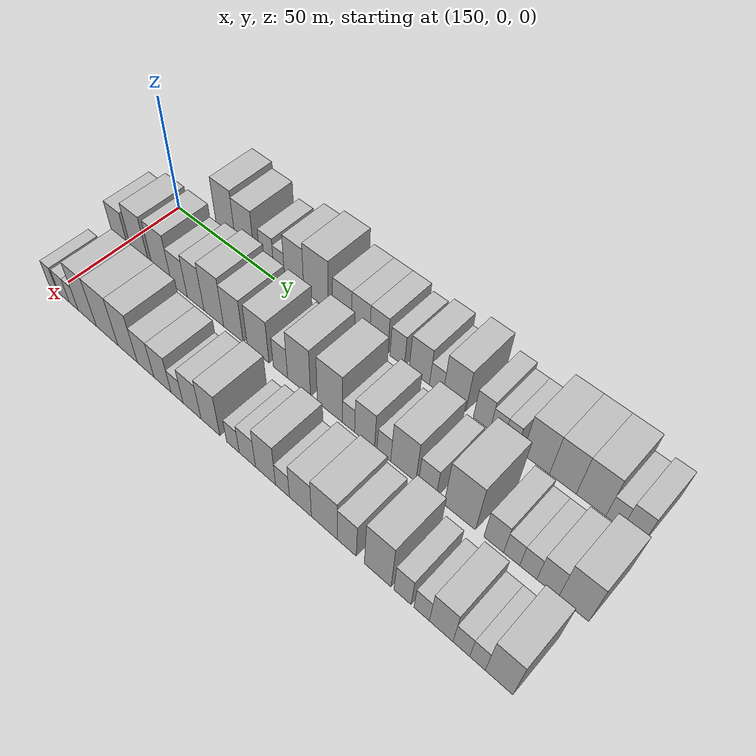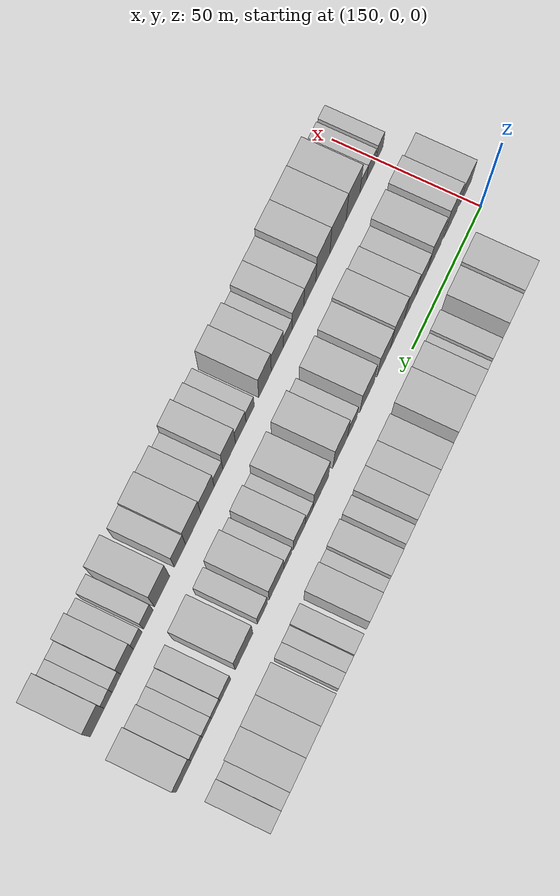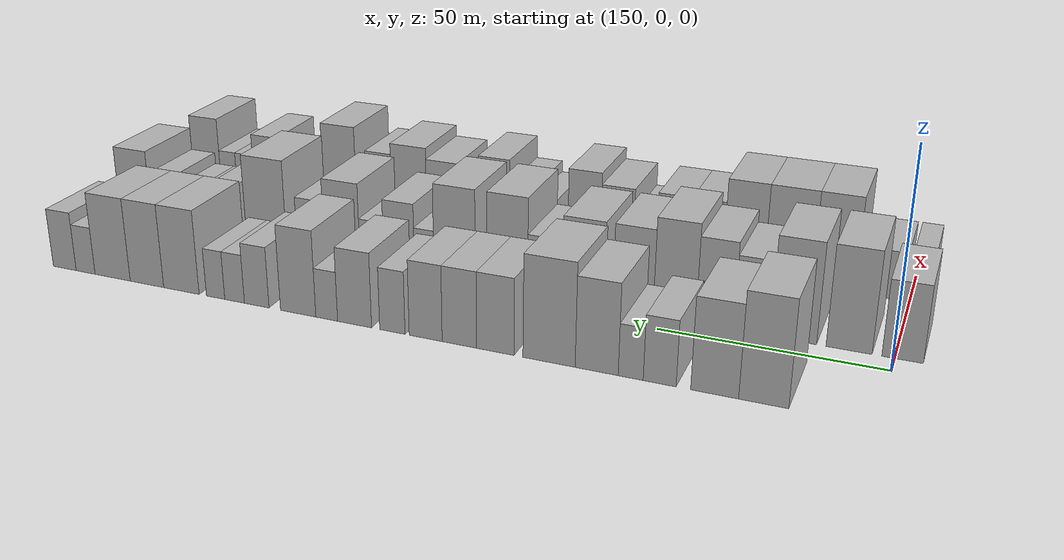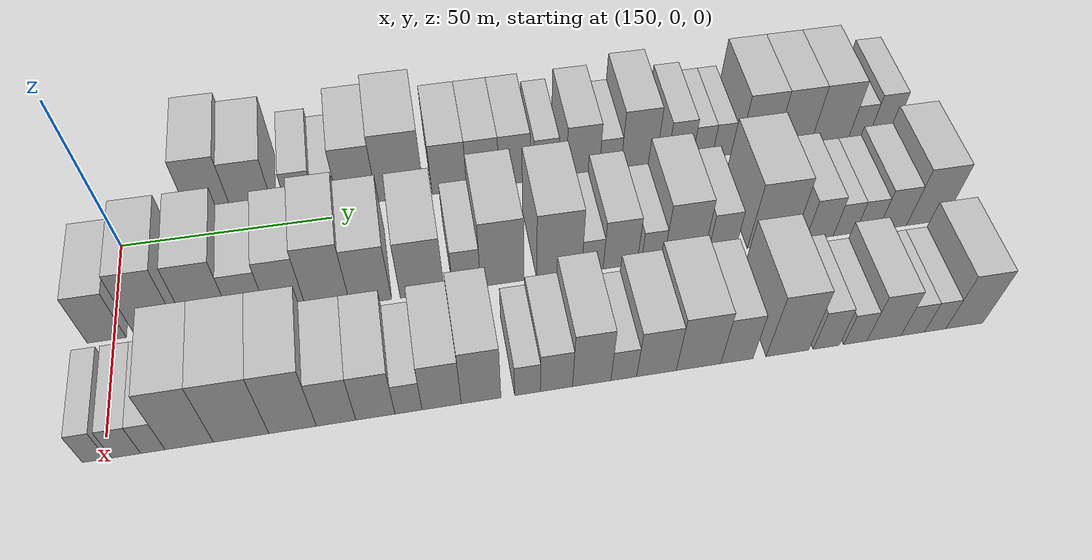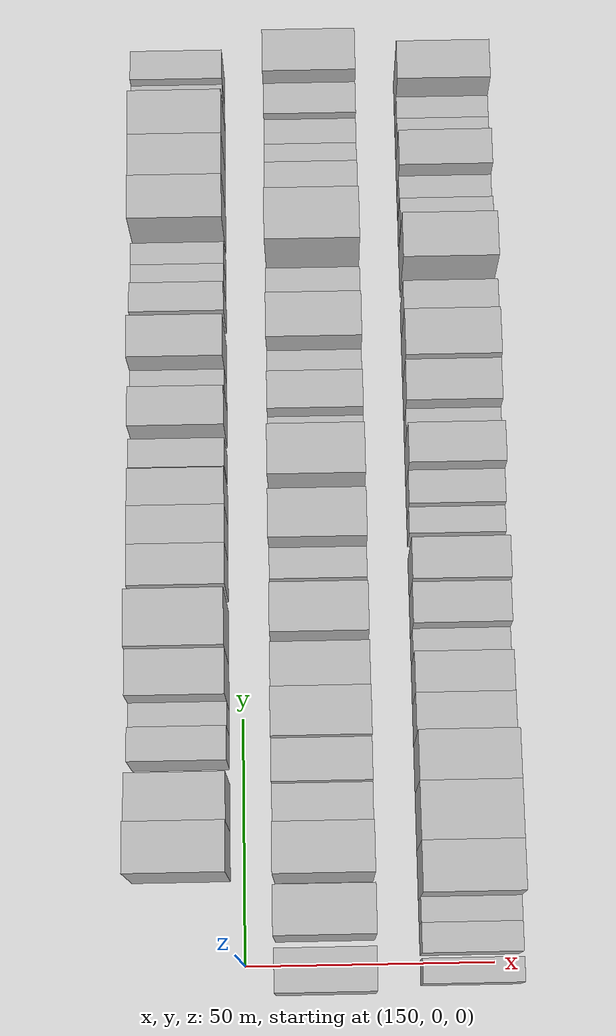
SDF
<sdf version="1.6">
 <world name="default">
  <model name="building_393">
   <static>1</static>
   <pose>137.0000 21.9258 0 0.000000 0.000000 0.000000</pose>
   <link name="link">
    <pose>0 0 12.00 0 0 0</pose>
    <collision name="collision"><geometry><box><size>20.0000 9.9744 24.0000</size></box></geometry></collision>
    <visual name="visual">
     <cast_shadows>0</cast_shadows>
     <geometry><box><size>20.0000 9.9744 24.0000</size></box></geometry>
     <material>
      <script>
       <uri>model://HANNAS_wall/materials/scripts</uri>
       <uri>model://HANNAS_wall/materials/textures</uri>
       <name>vrc/HANNAS_wall</name>
      </script>
     </material>
    </visual>
   </link>
  </model>
  <model name="building_394">
   <static>1</static>
   <pose>137.0000 31.8021 0 0.000000 0.000000 0.000000</pose>
   <link name="link">
    <pose>0 0 10.50 0 0 0</pose>
    <collision name="collision"><geometry><box><size>20.0000 9.7782 21.0000</size></box></geometry></collision>
    <visual name="visual">
     <cast_shadows>0</cast_shadows>
     <geometry><box><size>20.0000 9.7782 21.0000</size></box></geometry>
     <material>
      <script>
       <uri>model://HANNAS_wall/materials/scripts</uri>
       <uri>model://HANNAS_wall/materials/textures</uri>
       <name>vrc/HANNAS_wall</name>
      </script>
     </material>
    </visual>
   </link>
  </model>
  <model name="building_395">
   <static>1</static>
   <pose>137.0000 43.1486 0 0.000000 0.000000 0.000000</pose>
   <link name="link">
    <pose>0 0 7.50 0 0 0</pose>
    <collision name="collision"><geometry><box><size>20.0000 6.9146 15.0000</size></box></geometry></collision>
    <visual name="visual">
     <cast_shadows>0</cast_shadows>
     <geometry><box><size>20.0000 6.9146 15.0000</size></box></geometry>
     <material>
      <script>
       <uri>model://HANNAS_wall/materials/scripts</uri>
       <uri>model://HANNAS_wall/materials/textures</uri>
       <name>vrc/HANNAS_wall</name>
      </script>
     </material>
    </visual>
   </link>
  </model>
  <model name="building_396">
   <static>1</static>
   <pose>137.0000 49.2742 0 0.000000 0.000000 0.000000</pose>
   <link name="link">
    <pose>0 0 6.00 0 0 0</pose>
    <collision name="collision"><geometry><box><size>20.0000 5.3367 12.0000</size></box></geometry></collision>
    <visual name="visual">
     <cast_shadows>0</cast_shadows>
     <geometry><box><size>20.0000 5.3367 12.0000</size></box></geometry>
     <material>
      <script>
       <uri>model://HANNAS_wall/materials/scripts</uri>
       <uri>model://HANNAS_wall/materials/textures</uri>
       <name>vrc/HANNAS_wall</name>
      </script>
     </material>
    </visual>
   </link>
  </model>
  <model name="building_397">
   <static>1</static>
   <pose>137.0000 56.6134 0 0.000000 0.000000 0.000000</pose>
   <link name="link">
    <pose>0 0 10.50 0 0 0</pose>
    <collision name="collision"><geometry><box><size>20.0000 9.3418 21.0000</size></box></geometry></collision>
    <visual name="visual">
     <cast_shadows>0</cast_shadows>
     <geometry><box><size>20.0000 9.3418 21.0000</size></box></geometry>
     <material>
      <script>
       <uri>model://HANNAS_wall/materials/scripts</uri>
       <uri>model://HANNAS_wall/materials/textures</uri>
       <name>vrc/HANNAS_wall</name>
      </script>
     </material>
    </visual>
   </link>
  </model>
  <model name="building_398">
   <static>1</static>
   <pose>137.0000 67.1067 0 0.000000 0.000000 0.000000</pose>
   <link name="link">
    <pose>0 0 12.00 0 0 0</pose>
    <collision name="collision"><geometry><box><size>20.0000 11.6448 24.0000</size></box></geometry></collision>
    <visual name="visual">
     <cast_shadows>0</cast_shadows>
     <geometry><box><size>20.0000 11.6448 24.0000</size></box></geometry>
     <material>
      <script>
       <uri>model://HANNAS_wall/materials/scripts</uri>
       <uri>model://HANNAS_wall/materials/textures</uri>
       <name>vrc/HANNAS_wall</name>
      </script>
     </material>
    </visual>
   </link>
  </model>
  <model name="building_399">
   <static>1</static>
   <pose>137.0000 79.2334 0 0.000000 0.000000 0.000000</pose>
   <link name="link">
    <pose>0 0 9.00 0 0 0</pose>
    <collision name="collision"><geometry><box><size>20.0000 8.6085 18.0000</size></box></geometry></collision>
    <visual name="visual">
     <cast_shadows>0</cast_shadows>
     <geometry><box><size>20.0000 8.6085 18.0000</size></box></geometry>
     <material>
      <script>
       <uri>model://HANNAS_wall/materials/scripts</uri>
       <uri>model://HANNAS_wall/materials/textures</uri>
       <name>vrc/HANNAS_wall</name>
      </script>
     </material>
    </visual>
   </link>
  </model>
  <model name="building_400">
   <static>1</static>
   <pose>137.0000 87.5832 0 0.000000 0.000000 0.000000</pose>
   <link name="link">
    <pose>0 0 9.00 0 0 0</pose>
    <collision name="collision"><geometry><box><size>20.0000 8.0912 18.0000</size></box></geometry></collision>
    <visual name="visual">
     <cast_shadows>0</cast_shadows>
     <geometry><box><size>20.0000 8.0912 18.0000</size></box></geometry>
     <material>
      <script>
       <uri>model://HANNAS_wall/materials/scripts</uri>
       <uri>model://HANNAS_wall/materials/textures</uri>
       <name>vrc/HANNAS_wall</name>
      </script>
     </material>
    </visual>
   </link>
  </model>
  <model name="building_401">
   <static>1</static>
   <pose>137.0000 95.5647 0 0.000000 0.000000 0.000000</pose>
   <link name="link">
    <pose>0 0 9.00 0 0 0</pose>
    <collision name="collision"><geometry><box><size>20.0000 7.8718 18.0000</size></box></geometry></collision>
    <visual name="visual">
     <cast_shadows>0</cast_shadows>
     <geometry><box><size>20.0000 7.8718 18.0000</size></box></geometry>
     <material>
      <script>
       <uri>model://HANNAS_wall/materials/scripts</uri>
       <uri>model://HANNAS_wall/materials/textures</uri>
       <name>vrc/HANNAS_wall</name>
      </script>
     </material>
    </visual>
   </link>
  </model>
  <model name="building_402">
   <static>1</static>
   <pose>137.0000 103.5825 0 0.000000 0.000000 0.000000</pose>
   <link name="link">
    <pose>0 0 7.50 0 0 0</pose>
    <collision name="collision"><geometry><box><size>20.0000 6.1637 15.0000</size></box></geometry></collision>
    <visual name="visual">
     <cast_shadows>0</cast_shadows>
     <geometry><box><size>20.0000 6.1637 15.0000</size></box></geometry>
     <material>
      <script>
       <uri>model://HANNAS_wall/materials/scripts</uri>
       <uri>model://HANNAS_wall/materials/textures</uri>
       <name>vrc/HANNAS_wall</name>
      </script>
     </material>
    </visual>
   </link>
  </model>
  <model name="building_403">
   <static>1</static>
   <pose>137.0000 112.8990 0 0.000000 0.000000 0.000000</pose>
   <link name="link">
    <pose>0 0 9.00 0 0 0</pose>
    <collision name="collision"><geometry><box><size>20.0000 8.4694 18.0000</size></box></geometry></collision>
    <visual name="visual">
     <cast_shadows>0</cast_shadows>
     <geometry><box><size>20.0000 8.4694 18.0000</size></box></geometry>
     <material>
      <script>
       <uri>model://HANNAS_wall/materials/scripts</uri>
       <uri>model://HANNAS_wall/materials/textures</uri>
       <name>vrc/HANNAS_wall</name>
      </script>
     </material>
    </visual>
   </link>
  </model>
  <model name="building_404">
   <static>1</static>
   <pose>137.0000 119.8879 0 0.000000 0.000000 0.000000</pose>
   <link name="link">
    <pose>0 0 6.00 0 0 0</pose>
    <collision name="collision"><geometry><box><size>20.0000 5.5083 12.0000</size></box></geometry></collision>
    <visual name="visual">
     <cast_shadows>0</cast_shadows>
     <geometry><box><size>20.0000 5.5083 12.0000</size></box></geometry>
     <material>
      <script>
       <uri>model://HANNAS_wall/materials/scripts</uri>
       <uri>model://HANNAS_wall/materials/textures</uri>
       <name>vrc/HANNAS_wall</name>
      </script>
     </material>
    </visual>
   </link>
  </model>
  <model name="building_405">
   <static>1</static>
   <pose>137.0000 127.1871 0 0.000000 0.000000 0.000000</pose>
   <link name="link">
    <pose>0 0 10.50 0 0 0</pose>
    <collision name="collision"><geometry><box><size>20.0000 9.0901 21.0000</size></box></geometry></collision>
    <visual name="visual">
     <cast_shadows>0</cast_shadows>
     <geometry><box><size>20.0000 9.0901 21.0000</size></box></geometry>
     <material>
      <script>
       <uri>model://HANNAS_wall/materials/scripts</uri>
       <uri>model://HANNAS_wall/materials/textures</uri>
       <name>vrc/HANNAS_wall</name>
      </script>
     </material>
    </visual>
   </link>
  </model>
  <model name="building_406">
   <static>1</static>
   <pose>137.0000 137.9869 0 0.000000 0.000000 0.000000</pose>
   <link name="link">
    <pose>0 0 7.50 0 0 0</pose>
    <collision name="collision"><geometry><box><size>20.0000 6.5096 15.0000</size></box></geometry></collision>
    <visual name="visual">
     <cast_shadows>0</cast_shadows>
     <geometry><box><size>20.0000 6.5096 15.0000</size></box></geometry>
     <material>
      <script>
       <uri>model://HANNAS_wall/materials/scripts</uri>
       <uri>model://HANNAS_wall/materials/textures</uri>
       <name>vrc/HANNAS_wall</name>
      </script>
     </material>
    </visual>
   </link>
  </model>
  <model name="building_407">
   <static>1</static>
   <pose>137.0000 143.8694 0 0.000000 0.000000 0.000000</pose>
   <link name="link">
    <pose>0 0 6.00 0 0 0</pose>
    <collision name="collision"><geometry><box><size>20.0000 5.2553 12.0000</size></box></geometry></collision>
    <visual name="visual">
     <cast_shadows>0</cast_shadows>
     <geometry><box><size>20.0000 5.2553 12.0000</size></box></geometry>
     <material>
      <script>
       <uri>model://HANNAS_wall/materials/scripts</uri>
       <uri>model://HANNAS_wall/materials/textures</uri>
       <name>vrc/HANNAS_wall</name>
      </script>
     </material>
    </visual>
   </link>
  </model>
  <model name="building_408">
   <static>1</static>
   <pose>137.0000 148.9737 0 0.000000 0.000000 0.000000</pose>
   <link name="link">
    <pose>0 0 6.00 0 0 0</pose>
    <collision name="collision"><geometry><box><size>20.0000 4.9534 12.0000</size></box></geometry></collision>
    <visual name="visual">
     <cast_shadows>0</cast_shadows>
     <geometry><box><size>20.0000 4.9534 12.0000</size></box></geometry>
     <material>
      <script>
       <uri>model://HANNAS_wall/materials/scripts</uri>
       <uri>model://HANNAS_wall/materials/textures</uri>
       <name>vrc/HANNAS_wall</name>
      </script>
     </material>
    </visual>
   </link>
  </model>
  <model name="building_409">
   <static>1</static>
   <pose>137.0000 158.3519 0 0.000000 0.000000 0.000000</pose>
   <link name="link">
    <pose>0 0 10.50 0 0 0</pose>
    <collision name="collision"><geometry><box><size>20.0000 9.8030 21.0000</size></box></geometry></collision>
    <visual name="visual">
     <cast_shadows>0</cast_shadows>
     <geometry><box><size>20.0000 9.8030 21.0000</size></box></geometry>
     <material>
      <script>
       <uri>model://HANNAS_wall/materials/scripts</uri>
       <uri>model://HANNAS_wall/materials/textures</uri>
       <name>vrc/HANNAS_wall</name>
      </script>
     </material>
    </visual>
   </link>
  </model>
  <model name="building_410">
   <static>1</static>
   <pose>137.0000 167.9836 0 0.000000 0.000000 0.000000</pose>
   <link name="link">
    <pose>0 0 10.50 0 0 0</pose>
    <collision name="collision"><geometry><box><size>20.0000 9.4603 21.0000</size></box></geometry></collision>
    <visual name="visual">
     <cast_shadows>0</cast_shadows>
     <geometry><box><size>20.0000 9.4603 21.0000</size></box></geometry>
     <material>
      <script>
       <uri>model://HANNAS_wall/materials/scripts</uri>
       <uri>model://HANNAS_wall/materials/textures</uri>
       <name>vrc/HANNAS_wall</name>
      </script>
     </material>
    </visual>
   </link>
  </model>
  <model name="building_411">
   <static>1</static>
   <pose>137.0000 177.7825 0 0.000000 0.000000 0.000000</pose>
   <link name="link">
    <pose>0 0 10.50 0 0 0</pose>
    <collision name="collision"><geometry><box><size>20.0000 10.1376 21.0000</size></box></geometry></collision>
    <visual name="visual">
     <cast_shadows>0</cast_shadows>
     <geometry><box><size>20.0000 10.1376 21.0000</size></box></geometry>
     <material>
      <script>
       <uri>model://HANNAS_wall/materials/scripts</uri>
       <uri>model://HANNAS_wall/materials/textures</uri>
       <name>vrc/HANNAS_wall</name>
      </script>
     </material>
    </visual>
   </link>
  </model>
  <model name="building_412">
   <static>1</static>
   <pose>137.0000 185.6206 0 0.000000 0.000000 0.000000</pose>
   <link name="link">
    <pose>0 0 6.00 0 0 0</pose>
    <collision name="collision"><geometry><box><size>20.0000 5.5385 12.0000</size></box></geometry></collision>
    <visual name="visual">
     <cast_shadows>0</cast_shadows>
     <geometry><box><size>20.0000 5.5385 12.0000</size></box></geometry>
     <material>
      <script>
       <uri>model://HANNAS_wall/materials/scripts</uri>
       <uri>model://HANNAS_wall/materials/textures</uri>
       <name>vrc/HANNAS_wall</name>
      </script>
     </material>
    </visual>
   </link>
  </model>
  <model name="building_413">
   <static>1</static>
   <pose>137.0000 191.7824 0 0.000000 0.000000 0.000000</pose>
   <link name="link">
    <pose>0 0 7.50 0 0 0</pose>
    <collision name="collision"><geometry><box><size>20.0000 6.7850 15.0000</size></box></geometry></collision>
    <visual name="visual">
     <cast_shadows>0</cast_shadows>
     <geometry><box><size>20.0000 6.7850 15.0000</size></box></geometry>
     <material>
      <script>
       <uri>model://HANNAS_wall/materials/scripts</uri>
       <uri>model://HANNAS_wall/materials/textures</uri>
       <name>vrc/HANNAS_wall</name>
      </script>
     </material>
    </visual>
   </link>
  </model>
  <model name="building_504">
   <static>1</static>
   <pose>166.0000 -1.5237 0 0.000000 0.000000 0.000000</pose>
   <link name="link">
    <pose>0 0 9.00 0 0 0</pose>
    <collision name="collision"><geometry><box><size>20.0000 8.5031 18.0000</size></box></geometry></collision>
    <visual name="visual">
     <cast_shadows>0</cast_shadows>
     <geometry><box><size>20.0000 8.5031 18.0000</size></box></geometry>
     <material>
      <script>
       <uri>model://HANNAS_wall/materials/scripts</uri>
       <uri>model://HANNAS_wall/materials/textures</uri>
       <name>vrc/HANNAS_wall</name>
      </script>
     </material>
    </visual>
   </link>
  </model>
  <model name="building_505">
   <static>1</static>
   <pose>166.0000 9.5569 0 0.000000 0.000000 0.000000</pose>
   <link name="link">
    <pose>0 0 12.00 0 0 0</pose>
    <collision name="collision"><geometry><box><size>20.0000 9.6581 24.0000</size></box></geometry></collision>
    <visual name="visual">
     <cast_shadows>0</cast_shadows>
     <geometry><box><size>20.0000 9.6581 24.0000</size></box></geometry>
     <material>
      <script>
       <uri>model://HANNAS_wall/materials/scripts</uri>
       <uri>model://HANNAS_wall/materials/textures</uri>
       <name>vrc/HANNAS_wall</name>
      </script>
     </material>
    </visual>
   </link>
  </model>
  <model name="building_506">
   <static>1</static>
   <pose>166.0000 21.3772 0 0.000000 0.000000 0.000000</pose>
   <link name="link">
    <pose>0 0 12.00 0 0 0</pose>
    <collision name="collision"><geometry><box><size>20.0000 9.9826 24.0000</size></box></geometry></collision>
    <visual name="visual">
     <cast_shadows>0</cast_shadows>
     <geometry><box><size>20.0000 9.9826 24.0000</size></box></geometry>
     <material>
      <script>
       <uri>model://HANNAS_wall/materials/scripts</uri>
       <uri>model://HANNAS_wall/materials/textures</uri>
       <name>vrc/HANNAS_wall</name>
      </script>
     </material>
    </visual>
   </link>
  </model>
  <model name="building_507">
   <static>1</static>
   <pose>166.0000 30.3991 0 0.000000 0.000000 0.000000</pose>
   <link name="link">
    <pose>0 0 9.00 0 0 0</pose>
    <collision name="collision"><geometry><box><size>20.0000 8.0612 18.0000</size></box></geometry></collision>
    <visual name="visual">
     <cast_shadows>0</cast_shadows>
     <geometry><box><size>20.0000 8.0612 18.0000</size></box></geometry>
     <material>
      <script>
       <uri>model://HANNAS_wall/materials/scripts</uri>
       <uri>model://HANNAS_wall/materials/textures</uri>
       <name>vrc/HANNAS_wall</name>
      </script>
     </material>
    </visual>
   </link>
  </model>
  <model name="building_508">
   <static>1</static>
   <pose>166.0000 38.6995 0 0.000000 0.000000 0.000000</pose>
   <link name="link">
    <pose>0 0 10.50 0 0 0</pose>
    <collision name="collision"><geometry><box><size>20.0000 8.5395 21.0000</size></box></geometry></collision>
    <visual name="visual">
     <cast_shadows>0</cast_shadows>
     <geometry><box><size>20.0000 8.5395 21.0000</size></box></geometry>
     <material>
      <script>
       <uri>model://HANNAS_wall/materials/scripts</uri>
       <uri>model://HANNAS_wall/materials/textures</uri>
       <name>vrc/HANNAS_wall</name>
      </script>
     </material>
    </visual>
   </link>
  </model>
  <model name="building_509">
   <static>1</static>
   <pose>166.0000 47.8733 0 0.000000 0.000000 0.000000</pose>
   <link name="link">
    <pose>0 0 12.00 0 0 0</pose>
    <collision name="collision"><geometry><box><size>20.0000 9.8081 24.0000</size></box></geometry></collision>
    <visual name="visual">
     <cast_shadows>0</cast_shadows>
     <geometry><box><size>20.0000 9.8081 24.0000</size></box></geometry>
     <material>
      <script>
       <uri>model://HANNAS_wall/materials/scripts</uri>
       <uri>model://HANNAS_wall/materials/textures</uri>
       <name>vrc/HANNAS_wall</name>
      </script>
     </material>
    </visual>
   </link>
  </model>
  <model name="building_510">
   <static>1</static>
   <pose>166.0000 57.5107 0 0.000000 0.000000 0.000000</pose>
   <link name="link">
    <pose>0 0 10.50 0 0 0</pose>
    <collision name="collision"><geometry><box><size>20.0000 9.4669 21.0000</size></box></geometry></collision>
    <visual name="visual">
     <cast_shadows>0</cast_shadows>
     <geometry><box><size>20.0000 9.4669 21.0000</size></box></geometry>
     <material>
      <script>
       <uri>model://HANNAS_wall/materials/scripts</uri>
       <uri>model://HANNAS_wall/materials/textures</uri>
       <name>vrc/HANNAS_wall</name>
      </script>
     </material>
    </visual>
   </link>
  </model>
  <model name="building_511">
   <static>1</static>
   <pose>166.0000 69.3303 0 0.000000 0.000000 0.000000</pose>
   <link name="link">
    <pose>0 0 10.50 0 0 0</pose>
    <collision name="collision"><geometry><box><size>20.0000 10.1723 21.0000</size></box></geometry></collision>
    <visual name="visual">
     <cast_shadows>0</cast_shadows>
     <geometry><box><size>20.0000 10.1723 21.0000</size></box></geometry>
     <material>
      <script>
       <uri>model://HANNAS_wall/materials/scripts</uri>
       <uri>model://HANNAS_wall/materials/textures</uri>
       <name>vrc/HANNAS_wall</name>
      </script>
     </material>
    </visual>
   </link>
  </model>
  <model name="building_512">
   <static>1</static>
   <pose>166.0000 79.6611 0 0.000000 0.000000 0.000000</pose>
   <link name="link">
    <pose>0 0 7.50 0 0 0</pose>
    <collision name="collision"><geometry><box><size>20.0000 6.4892 15.0000</size></box></geometry></collision>
    <visual name="visual">
     <cast_shadows>0</cast_shadows>
     <geometry><box><size>20.0000 6.4892 15.0000</size></box></geometry>
     <material>
      <script>
       <uri>model://HANNAS_wall/materials/scripts</uri>
       <uri>model://HANNAS_wall/materials/textures</uri>
       <name>vrc/HANNAS_wall</name>
      </script>
     </material>
    </visual>
   </link>
  </model>
  <model name="building_513">
   <static>1</static>
   <pose>166.0000 87.9920 0 0.000000 0.000000 0.000000</pose>
   <link name="link">
    <pose>0 0 12.00 0 0 0</pose>
    <collision name="collision"><geometry><box><size>20.0000 10.1726 24.0000</size></box></geometry></collision>
    <visual name="visual">
     <cast_shadows>0</cast_shadows>
     <geometry><box><size>20.0000 10.1726 24.0000</size></box></geometry>
     <material>
      <script>
       <uri>model://HANNAS_wall/materials/scripts</uri>
       <uri>model://HANNAS_wall/materials/textures</uri>
       <name>vrc/HANNAS_wall</name>
      </script>
     </material>
    </visual>
   </link>
  </model>
  <model name="building_514">
   <static>1</static>
   <pose>166.0000 101.4111 0 0.000000 0.000000 0.000000</pose>
   <link name="link">
    <pose>0 0 12.00 0 0 0</pose>
    <collision name="collision"><geometry><box><size>20.0000 10.6658 24.0000</size></box></geometry></collision>
    <visual name="visual">
     <cast_shadows>0</cast_shadows>
     <geometry><box><size>20.0000 10.6658 24.0000</size></box></geometry>
     <material>
      <script>
       <uri>model://HANNAS_wall/materials/scripts</uri>
       <uri>model://HANNAS_wall/materials/textures</uri>
       <name>vrc/HANNAS_wall</name>
      </script>
     </material>
    </visual>
   </link>
  </model>
  <model name="building_515">
   <static>1</static>
   <pose>166.0000 109.3160 0 0.000000 0.000000 0.000000</pose>
   <link name="link">
    <pose>0 0 6.00 0 0 0</pose>
    <collision name="collision"><geometry><box><size>20.0000 5.1440 12.0000</size></box></geometry></collision>
    <visual name="visual">
     <cast_shadows>0</cast_shadows>
     <geometry><box><size>20.0000 5.1440 12.0000</size></box></geometry>
     <material>
      <script>
       <uri>model://HANNAS_wall/materials/scripts</uri>
       <uri>model://HANNAS_wall/materials/textures</uri>
       <name>vrc/HANNAS_wall</name>
      </script>
     </material>
    </visual>
   </link>
  </model>
  <model name="building_516">
   <static>1</static>
   <pose>166.0000 115.9597 0 0.000000 0.000000 0.000000</pose>
   <link name="link">
    <pose>0 0 9.00 0 0 0</pose>
    <collision name="collision"><geometry><box><size>20.0000 8.1435 18.0000</size></box></geometry></collision>
    <visual name="visual">
     <cast_shadows>0</cast_shadows>
     <geometry><box><size>20.0000 8.1435 18.0000</size></box></geometry>
     <material>
      <script>
       <uri>model://HANNAS_wall/materials/scripts</uri>
       <uri>model://HANNAS_wall/materials/textures</uri>
       <name>vrc/HANNAS_wall</name>
      </script>
     </material>
    </visual>
   </link>
  </model>
  <model name="building_517">
   <static>1</static>
   <pose>166.0000 123.7728 0 0.000000 0.000000 0.000000</pose>
   <link name="link">
    <pose>0 0 6.00 0 0 0</pose>
    <collision name="collision"><geometry><box><size>20.0000 5.4826 12.0000</size></box></geometry></collision>
    <visual name="visual">
     <cast_shadows>0</cast_shadows>
     <geometry><box><size>20.0000 5.4826 12.0000</size></box></geometry>
     <material>
      <script>
       <uri>model://HANNAS_wall/materials/scripts</uri>
       <uri>model://HANNAS_wall/materials/textures</uri>
       <name>vrc/HANNAS_wall</name>
      </script>
     </material>
    </visual>
   </link>
  </model>
  <model name="building_518">
   <static>1</static>
   <pose>166.0000 131.3986 0 0.000000 0.000000 0.000000</pose>
   <link name="link">
    <pose>0 0 10.50 0 0 0</pose>
    <collision name="collision"><geometry><box><size>20.0000 9.7689 21.0000</size></box></geometry></collision>
    <visual name="visual">
     <cast_shadows>0</cast_shadows>
     <geometry><box><size>20.0000 9.7689 21.0000</size></box></geometry>
     <material>
      <script>
       <uri>model://HANNAS_wall/materials/scripts</uri>
       <uri>model://HANNAS_wall/materials/textures</uri>
       <name>vrc/HANNAS_wall</name>
      </script>
     </material>
    </visual>
   </link>
  </model>
  <model name="building_519">
   <static>1</static>
   <pose>166.0000 140.6296 0 0.000000 0.000000 0.000000</pose>
   <link name="link">
    <pose>0 0 7.50 0 0 0</pose>
    <collision name="collision"><geometry><box><size>20.0000 6.6932 15.0000</size></box></geometry></collision>
    <visual name="visual">
     <cast_shadows>0</cast_shadows>
     <geometry><box><size>20.0000 6.6932 15.0000</size></box></geometry>
     <material>
      <script>
       <uri>model://HANNAS_wall/materials/scripts</uri>
       <uri>model://HANNAS_wall/materials/textures</uri>
       <name>vrc/HANNAS_wall</name>
      </script>
     </material>
    </visual>
   </link>
  </model>
  <model name="building_520">
   <static>1</static>
   <pose>166.0000 152.7469 0 0.000000 0.000000 0.000000</pose>
   <link name="link">
    <pose>0 0 12.00 0 0 0</pose>
    <collision name="collision"><geometry><box><size>20.0000 11.5414 24.0000</size></box></geometry></collision>
    <visual name="visual">
     <cast_shadows>0</cast_shadows>
     <geometry><box><size>20.0000 11.5414 24.0000</size></box></geometry>
     <material>
      <script>
       <uri>model://HANNAS_wall/materials/scripts</uri>
       <uri>model://HANNAS_wall/materials/textures</uri>
       <name>vrc/HANNAS_wall</name>
      </script>
     </material>
    </visual>
   </link>
  </model>
  <model name="building_521">
   <static>1</static>
   <pose>166.0000 164.9763 0 0.000000 0.000000 0.000000</pose>
   <link name="link">
    <pose>0 0 7.50 0 0 0</pose>
    <collision name="collision"><geometry><box><size>20.0000 6.9174 15.0000</size></box></geometry></collision>
    <visual name="visual">
     <cast_shadows>0</cast_shadows>
     <geometry><box><size>20.0000 6.9174 15.0000</size></box></geometry>
     <material>
      <script>
       <uri>model://HANNAS_wall/materials/scripts</uri>
       <uri>model://HANNAS_wall/materials/textures</uri>
       <name>vrc/HANNAS_wall</name>
      </script>
     </material>
    </visual>
   </link>
  </model>
  <model name="building_522">
   <static>1</static>
   <pose>166.0000 171.2101 0 0.000000 0.000000 0.000000</pose>
   <link name="link">
    <pose>0 0 6.00 0 0 0</pose>
    <collision name="collision"><geometry><box><size>20.0000 5.5502 12.0000</size></box></geometry></collision>
    <visual name="visual">
     <cast_shadows>0</cast_shadows>
     <geometry><box><size>20.0000 5.5502 12.0000</size></box></geometry>
     <material>
      <script>
       <uri>model://HANNAS_wall/materials/scripts</uri>
       <uri>model://HANNAS_wall/materials/textures</uri>
       <name>vrc/HANNAS_wall</name>
      </script>
     </material>
    </visual>
   </link>
  </model>
  <model name="building_523">
   <static>1</static>
   <pose>166.0000 176.8682 0 0.000000 0.000000 0.000000</pose>
   <link name="link">
    <pose>0 0 6.00 0 0 0</pose>
    <collision name="collision"><geometry><box><size>20.0000 5.7659 12.0000</size></box></geometry></collision>
    <visual name="visual">
     <cast_shadows>0</cast_shadows>
     <geometry><box><size>20.0000 5.7659 12.0000</size></box></geometry>
     <material>
      <script>
       <uri>model://HANNAS_wall/materials/scripts</uri>
       <uri>model://HANNAS_wall/materials/textures</uri>
       <name>vrc/HANNAS_wall</name>
      </script>
     </material>
    </visual>
   </link>
  </model>
  <model name="building_524">
   <static>1</static>
   <pose>166.0000 183.3580 0 0.000000 0.000000 0.000000</pose>
   <link name="link">
    <pose>0 0 7.50 0 0 0</pose>
    <collision name="collision"><geometry><box><size>20.0000 7.2137 15.0000</size></box></geometry></collision>
    <visual name="visual">
     <cast_shadows>0</cast_shadows>
     <geometry><box><size>20.0000 7.2137 15.0000</size></box></geometry>
     <material>
      <script>
       <uri>model://HANNAS_wall/materials/scripts</uri>
       <uri>model://HANNAS_wall/materials/textures</uri>
       <name>vrc/HANNAS_wall</name>
      </script>
     </material>
    </visual>
   </link>
  </model>
  <model name="building_525">
   <static>1</static>
   <pose>166.0000 191.8344 0 0.000000 0.000000 0.000000</pose>
   <link name="link">
    <pose>0 0 10.50 0 0 0</pose>
    <collision name="collision"><geometry><box><size>20.0000 9.7391 21.0000</size></box></geometry></collision>
    <visual name="visual">
     <cast_shadows>0</cast_shadows>
     <geometry><box><size>20.0000 9.7391 21.0000</size></box></geometry>
     <material>
      <script>
       <uri>model://HANNAS_wall/materials/scripts</uri>
       <uri>model://HANNAS_wall/materials/textures</uri>
       <name>vrc/HANNAS_wall</name>
      </script>
     </material>
    </visual>
   </link>
  </model>
  <model name="building_618">
   <static>1</static>
   <pose>195.0000 -1.9528 0 0.000000 0.000000 0.000000</pose>
   <link name="link">
    <pose>0 0 6.00 0 0 0</pose>
    <collision name="collision"><geometry><box><size>20.0000 4.9003 12.0000</size></box></geometry></collision>
    <visual name="visual">
     <cast_shadows>0</cast_shadows>
     <geometry><box><size>20.0000 4.9003 12.0000</size></box></geometry>
     <material>
      <script>
       <uri>model://HANNAS_wall/materials/scripts</uri>
       <uri>model://HANNAS_wall/materials/textures</uri>
       <name>vrc/HANNAS_wall</name>
      </script>
     </material>
    </visual>
   </link>
  </model>
  <model name="building_619">
   <static>1</static>
   <pose>195.0000 4.4335 0 0.000000 0.000000 0.000000</pose>
   <link name="link">
    <pose>0 0 6.00 0 0 0</pose>
    <collision name="collision"><geometry><box><size>20.0000 5.8722 12.0000</size></box></geometry></collision>
    <visual name="visual">
     <cast_shadows>0</cast_shadows>
     <geometry><box><size>20.0000 5.8722 12.0000</size></box></geometry>
     <material>
      <script>
       <uri>model://HANNAS_wall/materials/scripts</uri>
       <uri>model://HANNAS_wall/materials/textures</uri>
       <name>vrc/HANNAS_wall</name>
      </script>
     </material>
    </visual>
   </link>
  </model>
  <model name="building_620">
   <static>1</static>
   <pose>195.0000 9.8475 0 0.000000 0.000000 0.000000</pose>
   <link name="link">
    <pose>0 0 6.00 0 0 0</pose>
    <collision name="collision"><geometry><box><size>20.0000 4.9560 12.0000</size></box></geometry></collision>
    <visual name="visual">
     <cast_shadows>0</cast_shadows>
     <geometry><box><size>20.0000 4.9560 12.0000</size></box></geometry>
     <material>
      <script>
       <uri>model://HANNAS_wall/materials/scripts</uri>
       <uri>model://HANNAS_wall/materials/textures</uri>
       <name>vrc/HANNAS_wall</name>
      </script>
     </material>
    </visual>
   </link>
  </model>
  <model name="building_621">
   <static>1</static>
   <pose>195.0000 17.2913 0 0.000000 0.000000 0.000000</pose>
   <link name="link">
    <pose>0 0 12.00 0 0 0</pose>
    <collision name="collision"><geometry><box><size>20.0000 9.9315 24.0000</size></box></geometry></collision>
    <visual name="visual">
     <cast_shadows>0</cast_shadows>
     <geometry><box><size>20.0000 9.9315 24.0000</size></box></geometry>
     <material>
      <script>
       <uri>model://HANNAS_wall/materials/scripts</uri>
       <uri>model://HANNAS_wall/materials/textures</uri>
       <name>vrc/HANNAS_wall</name>
      </script>
     </material>
    </visual>
   </link>
  </model>
  <model name="building_622">
   <static>1</static>
   <pose>195.0000 28.0000 0 0.000000 0.000000 0.000000</pose>
   <link name="link">
    <pose>0 0 12.00 0 0 0</pose>
    <collision name="collision"><geometry><box><size>20.0000 11.4859 24.0000</size></box></geometry></collision>
    <visual name="visual">
     <cast_shadows>0</cast_shadows>
     <geometry><box><size>20.0000 11.4859 24.0000</size></box></geometry>
     <material>
      <script>
       <uri>model://HANNAS_wall/materials/scripts</uri>
       <uri>model://HANNAS_wall/materials/textures</uri>
       <name>vrc/HANNAS_wall</name>
      </script>
     </material>
    </visual>
   </link>
  </model>
  <model name="building_623">
   <static>1</static>
   <pose>195.0000 38.7147 0 0.000000 0.000000 0.000000</pose>
   <link name="link">
    <pose>0 0 12.00 0 0 0</pose>
    <collision name="collision"><geometry><box><size>20.0000 9.9434 24.0000</size></box></geometry></collision>
    <visual name="visual">
     <cast_shadows>0</cast_shadows>
     <geometry><box><size>20.0000 9.9434 24.0000</size></box></geometry>
     <material>
      <script>
       <uri>model://HANNAS_wall/materials/scripts</uri>
       <uri>model://HANNAS_wall/materials/textures</uri>
       <name>vrc/HANNAS_wall</name>
      </script>
     </material>
    </visual>
   </link>
  </model>
  <model name="building_624">
   <static>1</static>
   <pose>195.0000 47.8367 0 0.000000 0.000000 0.000000</pose>
   <link name="link">
    <pose>0 0 9.00 0 0 0</pose>
    <collision name="collision"><geometry><box><size>20.0000 8.3007 18.0000</size></box></geometry></collision>
    <visual name="visual">
     <cast_shadows>0</cast_shadows>
     <geometry><box><size>20.0000 8.3007 18.0000</size></box></geometry>
     <material>
      <script>
       <uri>model://HANNAS_wall/materials/scripts</uri>
       <uri>model://HANNAS_wall/materials/textures</uri>
       <name>vrc/HANNAS_wall</name>
      </script>
     </material>
    </visual>
   </link>
  </model>
  <model name="building_625">
   <static>1</static>
   <pose>195.0000 56.1545 0 0.000000 0.000000 0.000000</pose>
   <link name="link">
    <pose>0 0 9.00 0 0 0</pose>
    <collision name="collision"><geometry><box><size>20.0000 8.3348 18.0000</size></box></geometry></collision>
    <visual name="visual">
     <cast_shadows>0</cast_shadows>
     <geometry><box><size>20.0000 8.3348 18.0000</size></box></geometry>
     <material>
      <script>
       <uri>model://HANNAS_wall/materials/scripts</uri>
       <uri>model://HANNAS_wall/materials/textures</uri>
       <name>vrc/HANNAS_wall</name>
      </script>
     </material>
    </visual>
   </link>
  </model>
  <model name="building_626">
   <static>1</static>
   <pose>195.0000 63.2212 0 0.000000 0.000000 0.000000</pose>
   <link name="link">
    <pose>0 0 6.00 0 0 0</pose>
    <collision name="collision"><geometry><box><size>20.0000 5.7986 12.0000</size></box></geometry></collision>
    <visual name="visual">
     <cast_shadows>0</cast_shadows>
     <geometry><box><size>20.0000 5.7986 12.0000</size></box></geometry>
     <material>
      <script>
       <uri>model://HANNAS_wall/materials/scripts</uri>
       <uri>model://HANNAS_wall/materials/textures</uri>
       <name>vrc/HANNAS_wall</name>
      </script>
     </material>
    </visual>
   </link>
  </model>
  <model name="building_627">
   <static>1</static>
   <pose>195.0000 70.3381 0 0.000000 0.000000 0.000000</pose>
   <link name="link">
    <pose>0 0 9.00 0 0 0</pose>
    <collision name="collision"><geometry><box><size>20.0000 8.4352 18.0000</size></box></geometry></collision>
    <visual name="visual">
     <cast_shadows>0</cast_shadows>
     <geometry><box><size>20.0000 8.4352 18.0000</size></box></geometry>
     <material>
      <script>
       <uri>model://HANNAS_wall/materials/scripts</uri>
       <uri>model://HANNAS_wall/materials/textures</uri>
       <name>vrc/HANNAS_wall</name>
      </script>
     </material>
    </visual>
   </link>
  </model>
  <model name="building_628">
   <static>1</static>
   <pose>195.0000 78.8588 0 0.000000 0.000000 0.000000</pose>
   <link name="link">
    <pose>0 0 10.50 0 0 0</pose>
    <collision name="collision"><geometry><box><size>20.0000 8.6062 21.0000</size></box></geometry></collision>
    <visual name="visual">
     <cast_shadows>0</cast_shadows>
     <geometry><box><size>20.0000 8.6062 21.0000</size></box></geometry>
     <material>
      <script>
       <uri>model://HANNAS_wall/materials/scripts</uri>
       <uri>model://HANNAS_wall/materials/textures</uri>
       <name>vrc/HANNAS_wall</name>
      </script>
     </material>
    </visual>
   </link>
  </model>
  <model name="building_629">
   <static>1</static>
   <pose>195.0000 88.9723 0 0.000000 0.000000 0.000000</pose>
   <link name="link">
    <pose>0 0 6.00 0 0 0</pose>
    <collision name="collision"><geometry><box><size>20.0000 5.6207 12.0000</size></box></geometry></collision>
    <visual name="visual">
     <cast_shadows>0</cast_shadows>
     <geometry><box><size>20.0000 5.6207 12.0000</size></box></geometry>
     <material>
      <script>
       <uri>model://HANNAS_wall/materials/scripts</uri>
       <uri>model://HANNAS_wall/materials/textures</uri>
       <name>vrc/HANNAS_wall</name>
      </script>
     </material>
    </visual>
   </link>
  </model>
  <model name="building_630">
   <static>1</static>
   <pose>195.0000 95.3245 0 0.000000 0.000000 0.000000</pose>
   <link name="link">
    <pose>0 0 7.50 0 0 0</pose>
    <collision name="collision"><geometry><box><size>20.0000 7.0837 15.0000</size></box></geometry></collision>
    <visual name="visual">
     <cast_shadows>0</cast_shadows>
     <geometry><box><size>20.0000 7.0837 15.0000</size></box></geometry>
     <material>
      <script>
       <uri>model://HANNAS_wall/materials/scripts</uri>
       <uri>model://HANNAS_wall/materials/textures</uri>
       <name>vrc/HANNAS_wall</name>
      </script>
     </material>
    </visual>
   </link>
  </model>
  <model name="building_631">
   <static>1</static>
   <pose>195.0000 103.1132 0 0.000000 0.000000 0.000000</pose>
   <link name="link">
    <pose>0 0 10.50 0 0 0</pose>
    <collision name="collision"><geometry><box><size>20.0000 8.4939 21.0000</size></box></geometry></collision>
    <visual name="visual">
     <cast_shadows>0</cast_shadows>
     <geometry><box><size>20.0000 8.4939 21.0000</size></box></geometry>
     <material>
      <script>
       <uri>model://HANNAS_wall/materials/scripts</uri>
       <uri>model://HANNAS_wall/materials/textures</uri>
       <name>vrc/HANNAS_wall</name>
      </script>
     </material>
    </visual>
   </link>
  </model>
  <model name="building_632">
   <static>1</static>
   <pose>195.0000 110.2421 0 0.000000 0.000000 0.000000</pose>
   <link name="link">
    <pose>0 0 6.00 0 0 0</pose>
    <collision name="collision"><geometry><box><size>20.0000 5.7638 12.0000</size></box></geometry></collision>
    <visual name="visual">
     <cast_shadows>0</cast_shadows>
     <geometry><box><size>20.0000 5.7638 12.0000</size></box></geometry>
     <material>
      <script>
       <uri>model://HANNAS_wall/materials/scripts</uri>
       <uri>model://HANNAS_wall/materials/textures</uri>
       <name>vrc/HANNAS_wall</name>
      </script>
     </material>
    </visual>
   </link>
  </model>
  <model name="building_633">
   <static>1</static>
   <pose>195.0000 117.5779 0 0.000000 0.000000 0.000000</pose>
   <link name="link">
    <pose>0 0 9.00 0 0 0</pose>
    <collision name="collision"><geometry><box><size>20.0000 8.9079 18.0000</size></box></geometry></collision>
    <visual name="visual">
     <cast_shadows>0</cast_shadows>
     <geometry><box><size>20.0000 8.9079 18.0000</size></box></geometry>
     <material>
      <script>
       <uri>model://HANNAS_wall/materials/scripts</uri>
       <uri>model://HANNAS_wall/materials/textures</uri>
       <name>vrc/HANNAS_wall</name>
      </script>
     </material>
    </visual>
   </link>
  </model>
  <model name="building_634">
   <static>1</static>
   <pose>195.0000 127.0747 0 0.000000 0.000000 0.000000</pose>
   <link name="link">
    <pose>0 0 10.50 0 0 0</pose>
    <collision name="collision"><geometry><box><size>20.0000 10.0858 21.0000</size></box></geometry></collision>
    <visual name="visual">
     <cast_shadows>0</cast_shadows>
     <geometry><box><size>20.0000 10.0858 21.0000</size></box></geometry>
     <material>
      <script>
       <uri>model://HANNAS_wall/materials/scripts</uri>
       <uri>model://HANNAS_wall/materials/textures</uri>
       <name>vrc/HANNAS_wall</name>
      </script>
     </material>
    </visual>
   </link>
  </model>
  <model name="building_635">
   <static>1</static>
   <pose>195.0000 135.8056 0 0.000000 0.000000 0.000000</pose>
   <link name="link">
    <pose>0 0 9.00 0 0 0</pose>
    <collision name="collision"><geometry><box><size>20.0000 7.3760 18.0000</size></box></geometry></collision>
    <visual name="visual">
     <cast_shadows>0</cast_shadows>
     <geometry><box><size>20.0000 7.3760 18.0000</size></box></geometry>
     <material>
      <script>
       <uri>model://HANNAS_wall/materials/scripts</uri>
       <uri>model://HANNAS_wall/materials/textures</uri>
       <name>vrc/HANNAS_wall</name>
      </script>
     </material>
    </visual>
   </link>
  </model>
  <model name="building_636">
   <static>1</static>
   <pose>195.0000 147.4310 0 0.000000 0.000000 0.000000</pose>
   <link name="link">
    <pose>0 0 12.00 0 0 0</pose>
    <collision name="collision"><geometry><box><size>20.0000 9.8748 24.0000</size></box></geometry></collision>
    <visual name="visual">
     <cast_shadows>0</cast_shadows>
     <geometry><box><size>20.0000 9.8748 24.0000</size></box></geometry>
     <material>
      <script>
       <uri>model://HANNAS_wall/materials/scripts</uri>
       <uri>model://HANNAS_wall/materials/textures</uri>
       <name>vrc/HANNAS_wall</name>
      </script>
     </material>
    </visual>
   </link>
  </model>
  <model name="building_637">
   <static>1</static>
   <pose>195.0000 156.4275 0 0.000000 0.000000 0.000000</pose>
   <link name="link">
    <pose>0 0 7.50 0 0 0</pose>
    <collision name="collision"><geometry><box><size>20.0000 6.1184 15.0000</size></box></geometry></collision>
    <visual name="visual">
     <cast_shadows>0</cast_shadows>
     <geometry><box><size>20.0000 6.1184 15.0000</size></box></geometry>
     <material>
      <script>
       <uri>model://HANNAS_wall/materials/scripts</uri>
       <uri>model://HANNAS_wall/materials/textures</uri>
       <name>vrc/HANNAS_wall</name>
      </script>
     </material>
    </visual>
   </link>
  </model>
  <model name="building_638">
   <static>1</static>
   <pose>195.0000 163.2000 0 0.000000 0.000000 0.000000</pose>
   <link name="link">
    <pose>0 0 6.00 0 0 0</pose>
    <collision name="collision"><geometry><box><size>20.0000 5.4265 12.0000</size></box></geometry></collision>
    <visual name="visual">
     <cast_shadows>0</cast_shadows>
     <geometry><box><size>20.0000 5.4265 12.0000</size></box></geometry>
     <material>
      <script>
       <uri>model://HANNAS_wall/materials/scripts</uri>
       <uri>model://HANNAS_wall/materials/textures</uri>
       <name>vrc/HANNAS_wall</name>
      </script>
     </material>
    </visual>
   </link>
  </model>
  <model name="building_639">
   <static>1</static>
   <pose>195.0000 169.9320 0 0.000000 0.000000 0.000000</pose>
   <link name="link">
    <pose>0 0 9.00 0 0 0</pose>
    <collision name="collision"><geometry><box><size>20.0000 8.0375 18.0000</size></box></geometry></collision>
    <visual name="visual">
     <cast_shadows>0</cast_shadows>
     <geometry><box><size>20.0000 8.0375 18.0000</size></box></geometry>
     <material>
      <script>
       <uri>model://HANNAS_wall/materials/scripts</uri>
       <uri>model://HANNAS_wall/materials/textures</uri>
       <name>vrc/HANNAS_wall</name>
      </script>
     </material>
    </visual>
   </link>
  </model>
  <model name="building_640">
   <static>1</static>
   <pose>195.0000 176.7438 0 0.000000 0.000000 0.000000</pose>
   <link name="link">
    <pose>0 0 6.00 0 0 0</pose>
    <collision name="collision"><geometry><box><size>20.0000 5.5862 12.0000</size></box></geometry></collision>
    <visual name="visual">
     <cast_shadows>0</cast_shadows>
     <geometry><box><size>20.0000 5.5862 12.0000</size></box></geometry>
     <material>
      <script>
       <uri>model://HANNAS_wall/materials/scripts</uri>
       <uri>model://HANNAS_wall/materials/textures</uri>
       <name>vrc/HANNAS_wall</name>
      </script>
     </material>
    </visual>
   </link>
  </model>
  <model name="building_641">
   <static>1</static>
   <pose>195.0000 182.0739 0 0.000000 0.000000 0.000000</pose>
   <link name="link">
    <pose>0 0 6.00 0 0 0</pose>
    <collision name="collision"><geometry><box><size>20.0000 5.0739 12.0000</size></box></geometry></collision>
    <visual name="visual">
     <cast_shadows>0</cast_shadows>
     <geometry><box><size>20.0000 5.0739 12.0000</size></box></geometry>
     <material>
      <script>
       <uri>model://HANNAS_wall/materials/scripts</uri>
       <uri>model://HANNAS_wall/materials/textures</uri>
       <name>vrc/HANNAS_wall</name>
      </script>
     </material>
    </visual>
   </link>
  </model>
  <model name="building_642">
   <static>1</static>
   <pose>195.0000 189.0367 0 0.000000 0.000000 0.000000</pose>
   <link name="link">
    <pose>0 0 10.50 0 0 0</pose>
    <collision name="collision"><geometry><box><size>20.0000 8.8517 21.0000</size></box></geometry></collision>
    <visual name="visual">
     <cast_shadows>0</cast_shadows>
     <geometry><box><size>20.0000 8.8517 21.0000</size></box></geometry>
     <material>
      <script>
       <uri>model://HANNAS_wall/materials/scripts</uri>
       <uri>model://HANNAS_wall/materials/textures</uri>
       <name>vrc/HANNAS_wall</name>
      </script>
     </material>
    </visual>
   </link>
  </model>
 </world>
</sdf>
